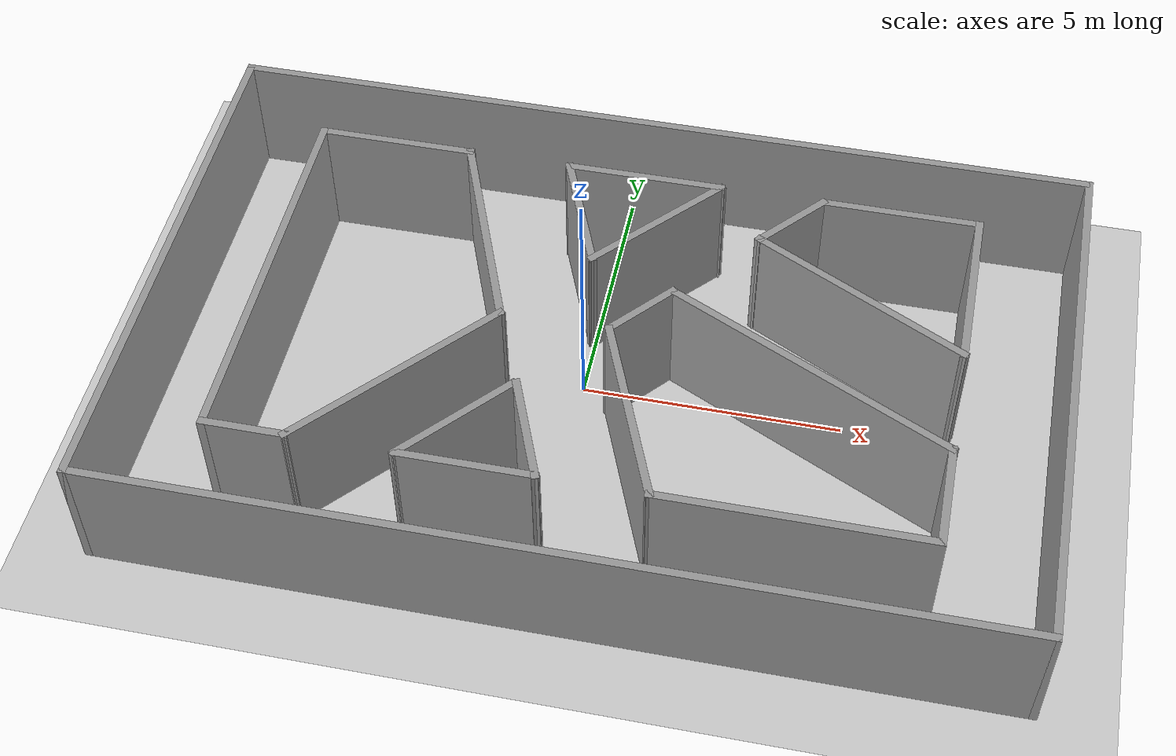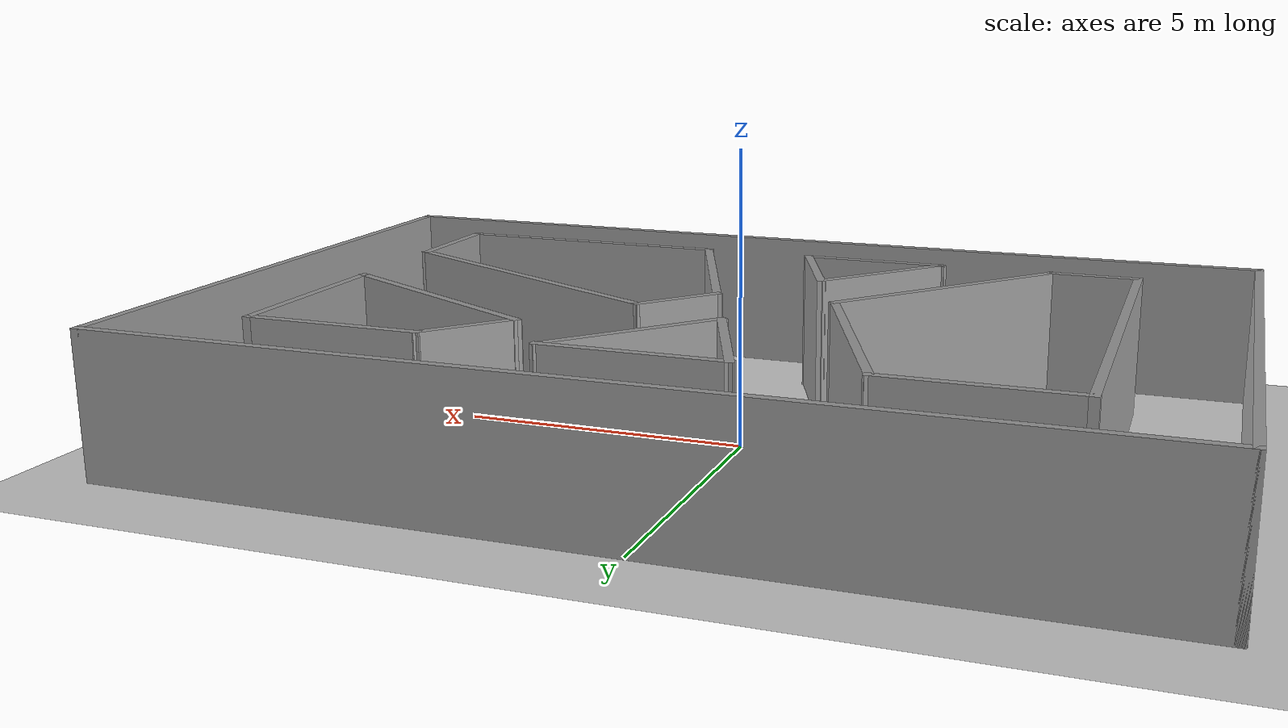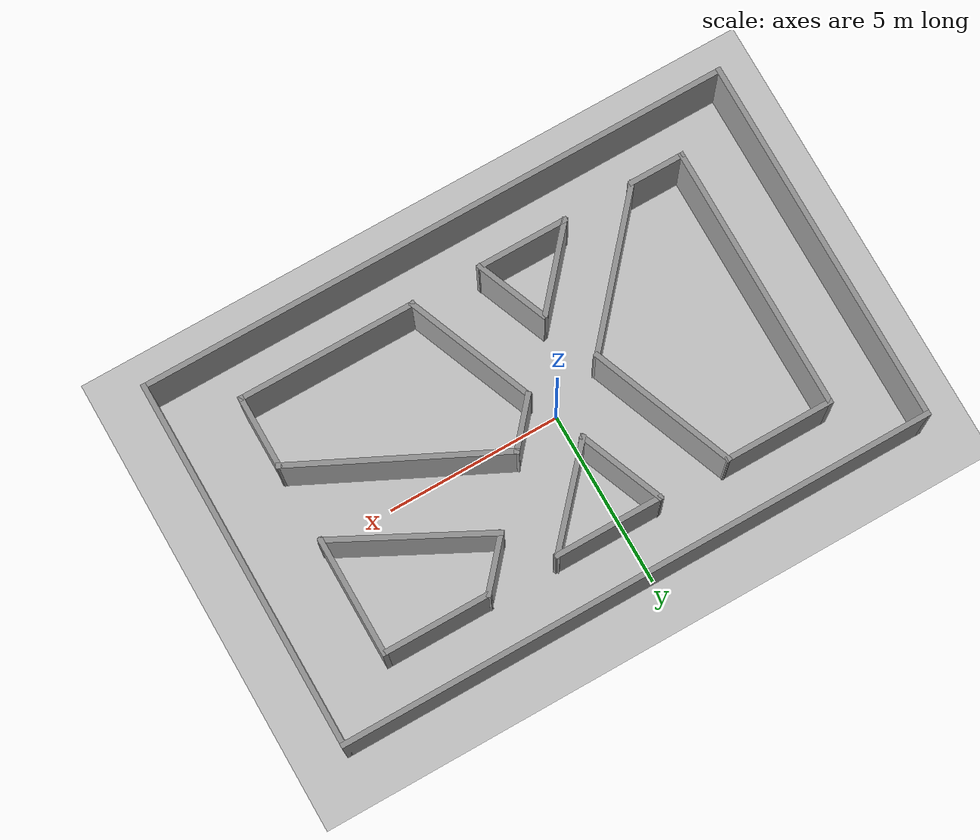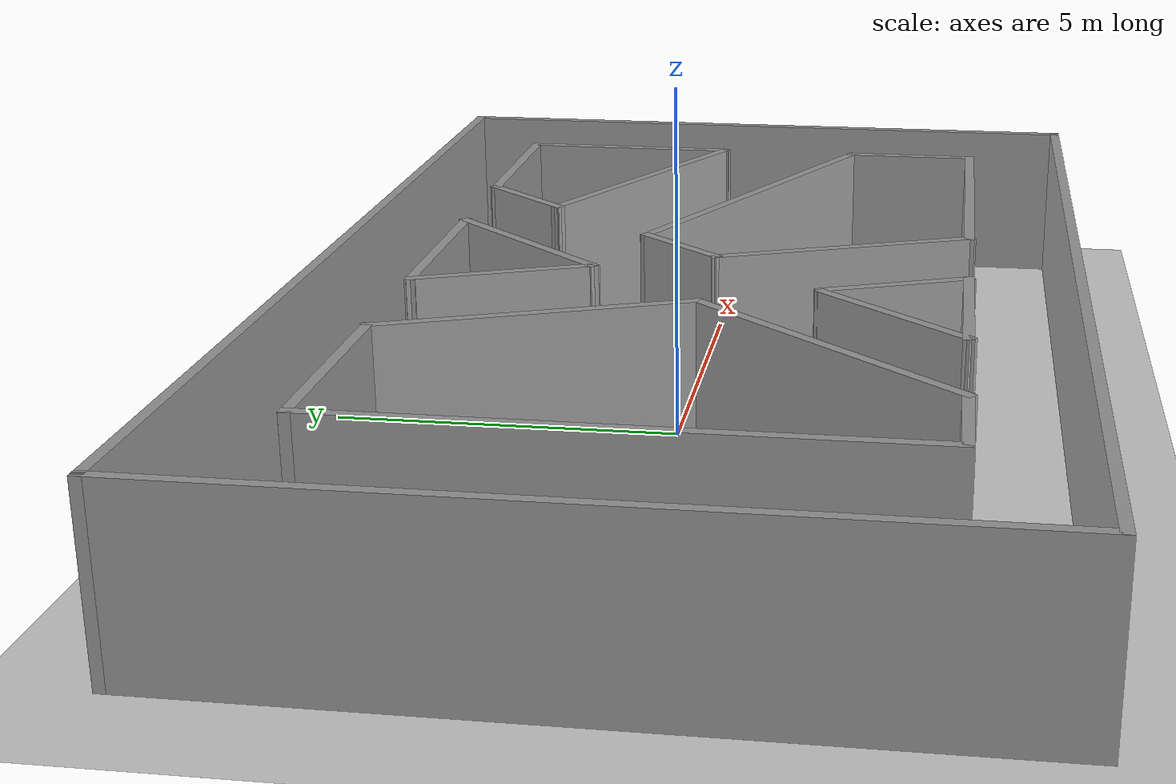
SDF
<?xml version="1.0" ?>
<sdf version="1.4">

  <world name="default">
    <include>
      <uri>model://ground_plane</uri>
    </include>

    <!-- Global light source -->
    <include>
      <uri>model://sun</uri>
    </include>

    <include>
      <uri>model://warehouse</uri>
    </include>

    <!-- Focus camera on tall pendulum -->
    <gui fullscreen='0'>
      <camera name='user_camera'>
        <pose>0.617550 0.072040 14.020960 0.000000 1.561792 3.140104</pose>
        <view_controller>orbit</view_controller>
      </camera>
    </gui>

  </world>
</sdf>

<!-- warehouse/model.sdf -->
<sdf version='1.6'>
  <model name='warehouse'>
    <pose frame=''>0.5 -0.25 0 0 -0 0</pose>
    <link name='Wall_0'>
      <collision name='Wall_0_Collision'>
        <geometry>
          <box>
            <size>17.15 0.15 2.5</size>
          </box>
        </geometry>
        <pose frame=''>0 0 1.25 0 -0 0</pose>
      </collision>
      <visual name='Wall_0_Visual'>
        <pose frame=''>0 0 1.25 0 -0 0</pose>
        <geometry>
          <box>
            <size>17.15 0.15 2.5</size>
          </box>
        </geometry>
        <material>
          <script>
            <uri>file://media/materials/scripts/gazebo.material</uri>
            <name>Gazebo/Grey</name>
          </script>
          <ambient>1 1 1 1</ambient>
        </material>
        <meta>
          <layer>0</layer>
        </meta>
      </visual>
      <pose frame=''>0 -5.25 0 0 -0 0</pose>
    </link>
    <link name='Wall_10'>
      <collision name='Wall_10_Collision'>
        <geometry>
          <box>
            <size>3.15 0.15 2.5</size>
          </box>
        </geometry>
        <pose frame=''>0 0 1.25 0 -0 0</pose>
      </collision>
      <visual name='Wall_10_Visual'>
        <pose frame=''>0 0 1.25 0 -0 0</pose>
        <geometry>
          <box>
            <size>3.15 0.15 2.5</size>
          </box>
        </geometry>
        <material>
          <script>
            <uri>file://media/materials/scripts/gazebo.material</uri>
            <name>Gazebo/Grey</name>
          </script>
          <ambient>1 1 1 1</ambient>
        </material>
        <meta>
          <layer>0</layer>
        </meta>
      </visual>
      <pose frame=''>-5 3.75 0 0 -0 0</pose>
    </link>
    <link name='Wall_14'>
      <collision name='Wall_14_Collision'>
        <geometry>
          <box>
            <size>3.15 0.15 2.5</size>
          </box>
        </geometry>
        <pose frame=''>0 0 1.25 0 -0 0</pose>
      </collision>
      <visual name='Wall_14_Visual'>
        <pose frame=''>0 0 1.25 0 -0 0</pose>
        <geometry>
          <box>
            <size>3.15 0.15 2.5</size>
          </box>
        </geometry>
        <material>
          <script>
            <uri>file://media/materials/scripts/gazebo.material</uri>
            <name>Gazebo/Grey</name>
          </script>
          <ambient>1 1 1 1</ambient>
        </material>
        <meta>
          <layer>0</layer>
        </meta>
      </visual>
      <pose frame=''>0 3.75 0 0 -0 0</pose>
    </link>
    <link name='Wall_19'>
      <collision name='Wall_19_Collision'>
        <geometry>
          <box>
            <size>3.15 0.15 2.5</size>
          </box>
        </geometry>
        <pose frame=''>0 0 1.25 0 -0 0</pose>
      </collision>
      <visual name='Wall_19_Visual'>
        <pose frame=''>0 0 1.25 0 -0 0</pose>
        <geometry>
          <box>
            <size>3.15 0.15 2.5</size>
          </box>
        </geometry>
        <material>
          <script>
            <uri>file://media/materials/scripts/gazebo.material</uri>
            <name>Gazebo/Grey</name>
          </script>
          <ambient>1 1 1 1</ambient>
        </material>
        <meta>
          <layer>0</layer>
        </meta>
      </visual>
      <pose frame=''>5 3.75 0 0 -0 3.14159</pose>
    </link>
    <link name='Wall_2'>
      <collision name='Wall_2_Collision'>
        <geometry>
          <box>
            <size>17.15 0.15 2.5</size>
          </box>
        </geometry>
        <pose frame=''>0 0 1.25 0 -0 0</pose>
      </collision>
      <visual name='Wall_2_Visual'>
        <pose frame=''>0 0 1.25 0 -0 0</pose>
        <geometry>
          <box>
            <size>17.15 0.15 2.5</size>
          </box>
        </geometry>
        <material>
          <script>
            <uri>file://media/materials/scripts/gazebo.material</uri>
            <name>Gazebo/Grey</name>
          </script>
          <ambient>1 1 1 1</ambient>
        </material>
        <meta>
          <layer>0</layer>
        </meta>
      </visual>
      <pose frame=''>0 5.25 0 0 -0 0</pose>
    </link>
    <link name='Wall_29'>
      <collision name='Wall_29_Collision'>
        <geometry>
          <box>
            <size>1.65 0.15 2.5</size>
          </box>
        </geometry>
        <pose frame=''>0 0 1.25 0 -0 0</pose>
      </collision>
      <visual name='Wall_29_Visual'>
        <pose frame=''>0 0 1.25 0 -0 0</pose>
        <geometry>
          <box>
            <size>1.65 0.15 2.5</size>
          </box>
        </geometry>
        <material>
          <script>
            <uri>file://media/materials/scripts/gazebo.material</uri>
            <name>Gazebo/Grey</name>
          </script>
          <ambient>1 1 1 1</ambient>
        </material>
        <meta>
          <layer>0</layer>
        </meta>
      </visual>
      <pose frame=''>-5.75 -3.75 0 0 -0 0</pose>
    </link>
    <link name='Wall_31'>
      <collision name='Wall_31_Collision'>
        <geometry>
          <box>
            <size>2.65 0.15 2.5</size>
          </box>
        </geometry>
        <pose frame=''>0 0 1.25 0 -0 0</pose>
      </collision>
      <visual name='Wall_31_Visual'>
        <pose frame=''>0 0 1.25 0 -0 0</pose>
        <geometry>
          <box>
            <size>2.65 0.15 2.5</size>
          </box>
        </geometry>
        <material>
          <script>
            <uri>file://media/materials/scripts/gazebo.material</uri>
            <name>Gazebo/Grey</name>
          </script>
          <ambient>1 1 1 1</ambient>
        </material>
        <meta>
          <layer>0</layer>
        </meta>
      </visual>
      <pose frame=''>-1.75 -3.75 0 0 -0 0</pose>
    </link>
    <link name='Wall_33'>
      <collision name='Wall_33_Collision'>
        <geometry>
          <box>
            <size>5.15 0.15 2.5</size>
          </box>
        </geometry>
        <pose frame=''>0 0 1.25 0 -0 0</pose>
      </collision>
      <visual name='Wall_33_Visual'>
        <pose frame=''>0 0 1.25 0 -0 0</pose>
        <geometry>
          <box>
            <size>5.15 0.15 2.5</size>
          </box>
        </geometry>
        <material>
          <script>
            <uri>file://media/materials/scripts/gazebo.material</uri>
            <name>Gazebo/Grey</name>
          </script>
          <ambient>1 1 1 1</ambient>
        </material>
        <meta>
          <layer>0</layer>
        </meta>
      </visual>
      <pose frame=''>4 -3.75 0 0 -0 3.14159</pose>
    </link>
    <link name='Wall_36'>
      <collision name='Wall_36_Collision'>
        <geometry>
          <box>
            <size>2.15 0.15 2.5</size>
          </box>
        </geometry>
        <pose frame=''>0 0 1.25 0 -0 0</pose>
      </collision>
      <visual name='Wall_36_Visual'>
        <pose frame=''>0 0 1.25 0 -0 0</pose>
        <geometry>
          <box>
            <size>2.15 0.15 2.5</size>
          </box>
        </geometry>
        <material>
          <script>
            <uri>file://media/materials/scripts/gazebo.material</uri>
            <name>Gazebo/Grey</name>
          </script>
          <ambient>1 1 1 1</ambient>
        </material>
        <meta>
          <layer>0</layer>
        </meta>
      </visual>
      <pose frame=''>6.5 -2.75 0 0 -0 1.5708</pose>
    </link>
    <link name='Wall_38'>
      <collision name='Wall_38_Collision'>
        <geometry>
          <box>
            <size>3.45 0.15 2.5</size>
          </box>
        </geometry>
        <pose frame=''>0 0 1.25 0 -0 0</pose>
      </collision>
      <visual name='Wall_38_Visual'>
        <pose frame=''>0 0 1.25 0 -0 0</pose>
        <geometry>
          <box>
            <size>3.45 0.15 2.5</size>
          </box>
        </geometry>
        <material>
          <script>
            <uri>file://media/materials/scripts/gazebo.material</uri>
            <name>Gazebo/Grey</name>
          </script>
          <ambient>1 1 1 1</ambient>
        </material>
        <meta>
          <layer>0</layer>
        </meta>
      </visual>
      <pose frame=''>6.5 2.1 0 0 0 -1.5708</pose>
    </link>
    <link name='Wall_4'>
      <collision name='Wall_4_Collision'>
        <geometry>
          <box>
            <size>10.65 0.15 2.5</size>
          </box>
        </geometry>
        <pose frame=''>0 0 1.25 0 -0 0</pose>
      </collision>
      <visual name='Wall_4_Visual'>
        <pose frame=''>0 0 1.25 0 -0 0</pose>
        <geometry>
          <box>
            <size>10.65 0.15 2.5</size>
          </box>
        </geometry>
        <material>
          <script>
            <uri>file://media/materials/scripts/gazebo.material</uri>
            <name>Gazebo/Grey</name>
          </script>
          <ambient>1 1 1 1</ambient>
        </material>
        <meta>
          <layer>0</layer>
        </meta>
      </visual>
      <pose frame=''>-8.5 0 0 0 0 -1.5708</pose>
    </link>
    <link name='Wall_40'>
      <collision name='Wall_40_Collision'>
        <geometry>
          <box>
            <size>2.7 0.15 2.5</size>
          </box>
        </geometry>
        <pose frame=''>0 0 1.25 0 -0 0</pose>
      </collision>
      <visual name='Wall_40_Visual'>
        <pose frame=''>0 0 1.25 0 -0 0</pose>
        <geometry>
          <box>
            <size>2.7 0.15 2.5</size>
          </box>
        </geometry>
        <material>
          <script>
            <uri>file://media/materials/scripts/gazebo.material</uri>
            <name>Gazebo/Grey</name>
          </script>
          <ambient>1 1 1 1</ambient>
        </material>
        <meta>
          <layer>0</layer>
        </meta>
      </visual>
      <pose frame=''>-2.16496 -2.7865 0 0 -0 0.856706</pose>
    </link>
    <link name='Wall_42'>
      <collision name='Wall_42_Collision'>
        <geometry>
          <box>
            <size>1.75 0.15 2.5</size>
          </box>
        </geometry>
        <pose frame=''>0 0 1.25 0 -0 0</pose>
      </collision>
      <visual name='Wall_42_Visual'>
        <pose frame=''>0 0 1.25 0 -0 0</pose>
        <geometry>
          <box>
            <size>1.75 0.15 2.5</size>
          </box>
        </geometry>
        <material>
          <script>
            <uri>file://media/materials/scripts/gazebo.material</uri>
            <name>Gazebo/Grey</name>
          </script>
          <ambient>1 1 1 1</ambient>
        </material>
        <meta>
          <layer>0</layer>
        </meta>
      </visual>
      <pose frame=''>2.97606 3.14545 0 0 0 -2.28489</pose>
    </link>
    <link name='Wall_50'>
      <collision name='Wall_50_Collision'>
        <geometry>
          <box>
            <size>4.8 0.15 2.5</size>
          </box>
        </geometry>
        <pose frame=''>0 0 1.25 0 -0 0</pose>
      </collision>
      <visual name='Wall_50_Visual'>
        <pose frame=''>0 0 1.25 0 -0 0</pose>
        <geometry>
          <box>
            <size>4.8 0.15 2.5</size>
          </box>
        </geometry>
        <material>
          <script>
            <uri>file://media/materials/scripts/gazebo.material</uri>
            <name>Gazebo/Grey</name>
          </script>
          <ambient>1 1 1 1</ambient>
        </material>
        <meta>
          <layer>0</layer>
        </meta>
      </visual>
      <pose frame=''>-3.47554 -1.99454 0 0 -0 0.855709</pose>
    </link>
    <link name='Wall_52'>
      <collision name='Wall_52_Collision'>
        <geometry>
          <box>
            <size>2.25 0.15 2.5</size>
          </box>
        </geometry>
        <pose frame=''>0 0 1.25 0 -0 0</pose>
      </collision>
      <visual name='Wall_52_Visual'>
        <pose frame=''>0 0 1.25 0 -0 0</pose>
        <geometry>
          <box>
            <size>2.25 0.15 2.5</size>
          </box>
        </geometry>
        <material>
          <script>
            <uri>file://media/materials/scripts/gazebo.material</uri>
            <name>Gazebo/Grey</name>
          </script>
          <ambient>1 1 1 1</ambient>
        </material>
        <meta>
          <layer>0</layer>
        </meta>
      </visual>
      <pose frame=''>-0.88996 -2.7751 0 0 -0 1.9513</pose>
    </link>
    <link name='Wall_54'>
      <collision name='Wall_54_Collision'>
        <geometry>
          <box>
            <size>4.42925 0.15 2.5</size>
          </box>
        </geometry>
        <pose frame=''>0 0 1.25 0 -0 0</pose>
      </collision>
      <visual name='Wall_54_Visual'>
        <pose frame=''>0 0 1.25 0 -0 0</pose>
        <geometry>
          <box>
            <size>4.42925 0.15 2.5</size>
          </box>
        </geometry>
        <material>
          <script>
            <uri>file://media/materials/scripts/gazebo.material</uri>
            <name>Gazebo/Grey</name>
          </script>
          <ambient>1 1 1 1</ambient>
        </material>
        <meta>
          <layer>0</layer>
        </meta>
      </visual>
      <pose frame=''>-2.72554 1.75546 0 0 0 -1.20042</pose>
    </link>
    <link name='Wall_57'>
      <collision name='Wall_57_Collision'>
        <geometry>
          <box>
            <size>2.65 0.15 2.5</size>
          </box>
        </geometry>
        <pose frame=''>0 0 1.25 0 -0 0</pose>
      </collision>
      <visual name='Wall_57_Visual'>
        <pose frame=''>0 0 1.25 0 -0 0</pose>
        <geometry>
          <box>
            <size>2.65 0.15 2.5</size>
          </box>
        </geometry>
        <material>
          <script>
            <uri>file://media/materials/scripts/gazebo.material</uri>
            <name>Gazebo/Grey</name>
          </script>
          <ambient>1 1 1 1</ambient>
        </material>
        <meta>
          <layer>0</layer>
        </meta>
      </visual>
      <pose frame=''>-1.03576 2.5894 0 0 0 -1.19029</pose>
    </link>
    <link name='Wall_6'>
      <collision name='Wall_6_Collision'>
        <geometry>
          <box>
            <size>10.65 0.15 2.5</size>
          </box>
        </geometry>
        <pose frame=''>0 0 1.25 0 -0 0</pose>
      </collision>
      <visual name='Wall_6_Visual'>
        <pose frame=''>0 0 1.25 0 -0 0</pose>
        <geometry>
          <box>
            <size>10.65 0.15 2.5</size>
          </box>
        </geometry>
        <material>
          <script>
            <uri>file://media/materials/scripts/gazebo.material</uri>
            <name>Gazebo/Grey</name>
          </script>
          <ambient>1 1 1 1</ambient>
        </material>
        <meta>
          <layer>0</layer>
        </meta>
      </visual>
      <pose frame=''>8.5 0 0 0 0 -1.5708</pose>
    </link>
    <link name='Wall_61'>
      <collision name='Wall_61_Collision'>
        <geometry>
          <box>
            <size>3.26113 0.15 2.5</size>
          </box>
        </geometry>
        <pose frame=''>0 0 1.25 0 -0 0</pose>
      </collision>
      <visual name='Wall_61_Visual'>
        <pose frame=''>0 0 1.25 0 -0 0</pose>
        <geometry>
          <box>
            <size>3.26113 0.15 2.5</size>
          </box>
        </geometry>
        <material>
          <script>
            <uri>file://media/materials/scripts/gazebo.material</uri>
            <name>Gazebo/Grey</name>
          </script>
          <ambient>1 1 1 1</ambient>
        </material>
        <meta>
          <layer>0</layer>
        </meta>
      </visual>
      <pose frame=''>0.464238 2.5894 0 0 0 -2.29942</pose>
    </link>
    <link name='Wall_65'>
      <collision name='Wall_65_Collision'>
        <geometry>
          <box>
            <size>3.95 0.15 2.5</size>
          </box>
        </geometry>
        <pose frame=''>0 0 1.25 0 -0 0</pose>
      </collision>
      <visual name='Wall_65_Visual'>
        <pose frame=''>0 0 1.25 0 -0 0</pose>
        <geometry>
          <box>
            <size>3.95 0.15 2.5</size>
          </box>
        </geometry>
        <material>
          <script>
            <uri>file://media/materials/scripts/gazebo.material</uri>
            <name>Gazebo/Grey</name>
          </script>
          <ambient>1 1 1 1</ambient>
        </material>
        <meta>
          <layer>0</layer>
        </meta>
      </visual>
      <pose frame=''>0.7945 -1.986 0 0 -0 1.95125</pose>
    </link>
    <link name='Wall_69'>
      <collision name='Wall_69_Collision'>
        <geometry>
          <box>
            <size>1.65 0.15 2.5</size>
          </box>
        </geometry>
        <pose frame=''>0 0 1.25 0 -0 0</pose>
      </collision>
      <visual name='Wall_69_Visual'>
        <pose frame=''>0 0 1.25 0 -0 0</pose>
        <geometry>
          <box>
            <size>1.65 0.15 2.5</size>
          </box>
        </geometry>
        <material>
          <script>
            <uri>file://media/materials/scripts/gazebo.material</uri>
            <name>Gazebo/Grey</name>
          </script>
          <ambient>1 1 1 1</ambient>
        </material>
        <meta>
          <layer>0</layer>
        </meta>
      </visual>
      <pose frame=''>0.577624 0.346987 0 0 -0 0.861238</pose>
    </link>
    <link name='Wall_71'>
      <collision name='Wall_71_Collision'>
        <geometry>
          <box>
            <size>4.70601 0.15 2.5</size>
          </box>
        </geometry>
        <pose frame=''>0 0 1.25 0 -0 0</pose>
      </collision>
      <visual name='Wall_71_Visual'>
        <pose frame=''>0 0 1.25 0 -0 0</pose>
        <geometry>
          <box>
            <size>4.70601 0.15 2.5</size>
          </box>
        </geometry>
        <material>
          <script>
            <uri>file://media/materials/scripts/gazebo.material</uri>
            <name>Gazebo/Grey</name>
          </script>
          <ambient>1 1 1 1</ambient>
        </material>
        <meta>
          <layer>0</layer>
        </meta>
      </visual>
      <pose frame=''>4.47606 1.49545 0 0 0 -0.476792</pose>
    </link>
    <link name='Wall_73'>
      <collision name='Wall_73_Collision'>
        <geometry>
          <box>
            <size>6.20253 0.15 2.5</size>
          </box>
        </geometry>
        <pose frame=''>0 0 1.25 0 -0 0</pose>
      </collision>
      <visual name='Wall_73_Visual'>
        <pose frame=''>0 0 1.25 0 -0 0</pose>
        <geometry>
          <box>
            <size>6.20253 0.15 2.5</size>
          </box>
        </geometry>
        <material>
          <script>
            <uri>file://media/materials/scripts/gazebo.material</uri>
            <name>Gazebo/Grey</name>
          </script>
          <ambient>1 1 1 1</ambient>
        </material>
        <meta>
          <layer>0</layer>
        </meta>
      </visual>
      <pose frame=''>3.78312 -0.417013 0 0 0 -0.456125</pose>
    </link>
    <link name='Wall_8'>
      <collision name='Wall_8_Collision'>
        <geometry>
          <box>
            <size>7.65067 0.15 2.5</size>
          </box>
        </geometry>
        <pose frame=''>0 0 1.25 0 -0 0</pose>
      </collision>
      <visual name='Wall_8_Visual'>
        <pose frame=''>0 0 1.25 0 -0 0</pose>
        <geometry>
          <box>
            <size>7.65067 0.15 2.5</size>
          </box>
        </geometry>
        <material>
          <script>
            <uri>file://media/materials/scripts/gazebo.material</uri>
            <name>Gazebo/Grey</name>
          </script>
          <ambient>1 1 1 1</ambient>
        </material>
        <meta>
          <layer>0</layer>
        </meta>
      </visual>
      <pose frame=''>-6.5 0 0 0 0 -1.5708</pose>
    </link>
    <static>1</static>
  </model>
</sdf>
